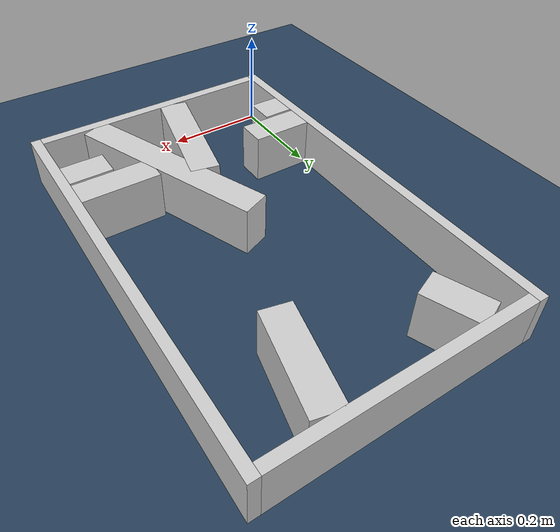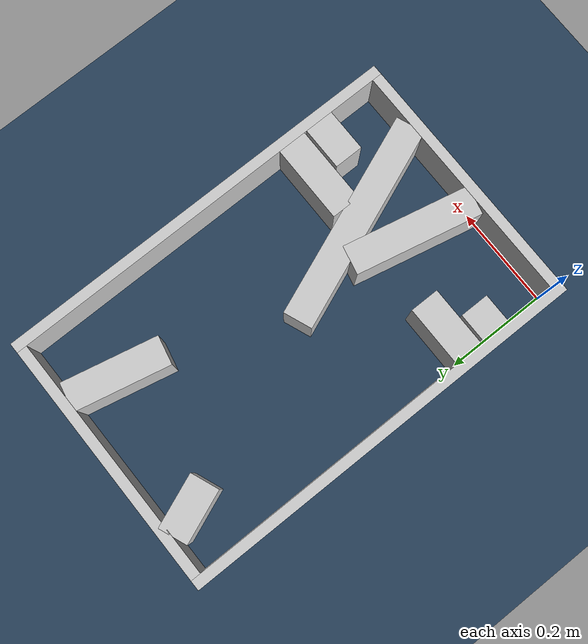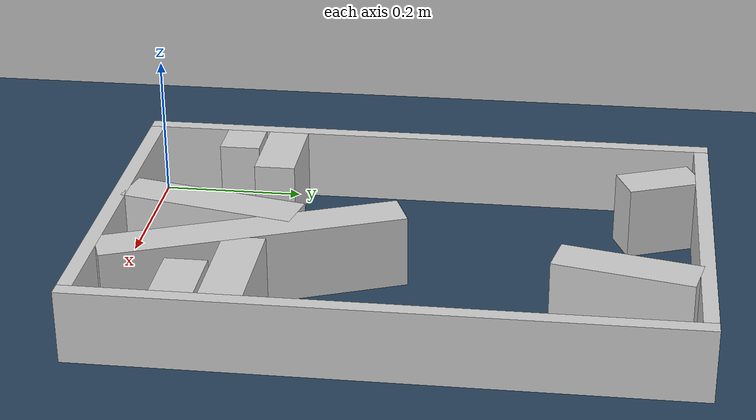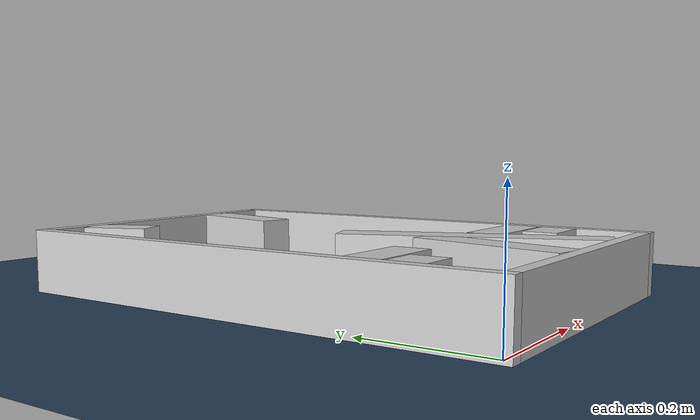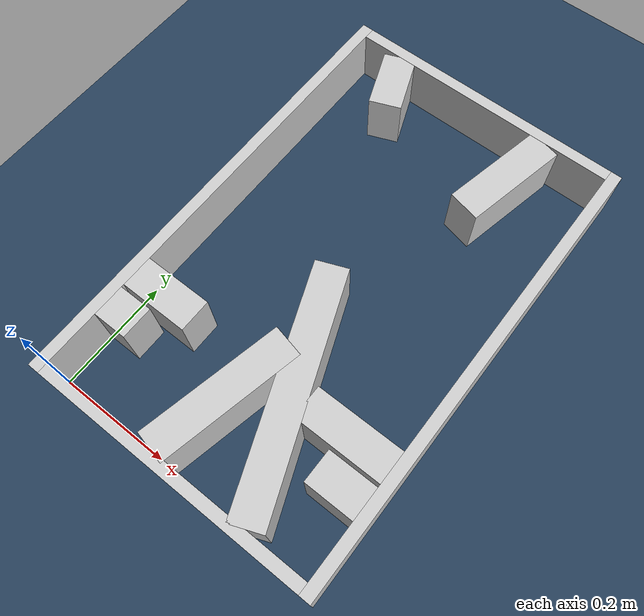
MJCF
<?xml version="1.0" ?>
<mujoco model="generated_real_template">
  <compiler angle="degree"/>
  <option timestep="0.002" integrator="implicitfast" iterations="100" cone="elliptic"/>
  <default>
    <geom density="1"/>
  </default>
  <asset>
    <texture builtin="gradient" height="3072" rgb1="0.3 0.5 0.7" rgb2="0 0 0" type="skybox" width="512"/>
    <texture builtin="checker" height="300" mark="edge" markrgb="0.8 0.8 0.8" name="groundplane" rgb1="0.2 0.3 0.4" rgb2="0.1 0.2 0.3" type="2d" width="300"/>
    <material name="groundplane" reflectance="0.2" texrepeat="5 5" texture="groundplane" texuniform="true"/>
  </asset>
  <worldbody>
    <light dir="0 0 -1" directional="true" pos="0 0 1.5"/>
    <geom name="floor" type="plane" condim="4" friction="0.5 0.005 0.001" material="groundplane" size="0 0 0.05"/>
    <body name="walls">
      <geom name="wall_boundary_left" type="box" condim="4" friction="1.0 0.005 0.0001" rgba="0.8 0.8 0.8 1" pos="-0.010000 0.387500 0.050000" euler="0 0 0.000000" size="0.010000 0.407500 0.050000"/>
      <geom name="wall_boundary_right" type="box" condim="4" friction="1.0 0.005 0.0001" rgba="0.8 0.8 0.8 1" pos="0.500000 0.387500 0.050000" euler="0 0 0.000000" size="0.010000 0.407500 0.050000"/>
      <geom name="wall_boundary_bottom" type="box" condim="4" friction="1.0 0.005 0.0001" rgba="0.8 0.8 0.8 1" pos="0.245000 -0.010000 0.050000" euler="0 0 0.000000" size="0.245000 0.010000 0.050000"/>
      <geom name="wall_boundary_top" type="box" condim="4" friction="1.0 0.005 0.0001" rgba="0.8 0.8 0.8 1" pos="0.245000 0.785000 0.050000" euler="0 0 0.000000" size="0.245000 0.010000 0.050000"/>
      <geom name="wall_inner_1_1" type="box" condim="4" friction="1.0 0.005 0.0001" rgba="0.8 0.8 0.8 1" pos="0.306972 0.190782 0.050000" euler="0 0 111.554950" size="0.205128 0.028500 0.050000"/>
      <geom name="wall_inner_1_2" type="box" condim="4" friction="1.0 0.005 0.0001" rgba="0.8 0.8 0.8 1" pos="0.095763 0.725463 0.050000" euler="0 0 111.554950" size="0.053262 0.028500 0.050000"/>
      <geom name="wall_inner_2_1" type="box" condim="4" friction="1.0 0.005 0.0001" rgba="0.8 0.8 0.8 1" pos="0.354912 0.683587 0.050000" euler="0 0 -102.454827" size="0.093616 0.028500 0.050000"/>
      <geom name="wall_inner_2_2" type="box" condim="4" friction="1.0 0.005 0.0001" rgba="0.8 0.8 0.8 1" pos="0.230747 0.121419 0.050000" euler="0 0 -102.454827" size="0.124345 0.028500 0.050000"/>
      <geom name="wall_inner_3_1" type="box" condim="4" friction="1.0 0.005 0.0001" rgba="0.8 0.8 0.8 1" pos="0.060767 0.186743 0.050000" euler="0 0 0.000000" size="0.060767 0.028500 0.050000"/>
      <geom name="wall_inner_3_2" type="box" condim="4" friction="1.0 0.005 0.0001" rgba="0.8 0.8 0.8 1" pos="0.413197 0.186743 0.050000" euler="0 0 0.000000" size="0.076803 0.028500 0.050000"/>
      <geom name="wall_inner_4_1" type="box" condim="4" friction="1.0 0.005 0.0001" rgba="0.8 0.8 0.8 1" pos="0.030176 0.124779 0.050000" euler="0 0 0.000000" size="0.030176 0.028500 0.050000"/>
      <geom name="wall_inner_4_2" type="box" condim="4" friction="1.0 0.005 0.0001" rgba="0.8 0.8 0.8 1" pos="0.447339 0.124779 0.050000" euler="0 0 0.000000" size="0.042661 0.028500 0.050000"/>
    </body>
  </worldbody>
</mujoco>
